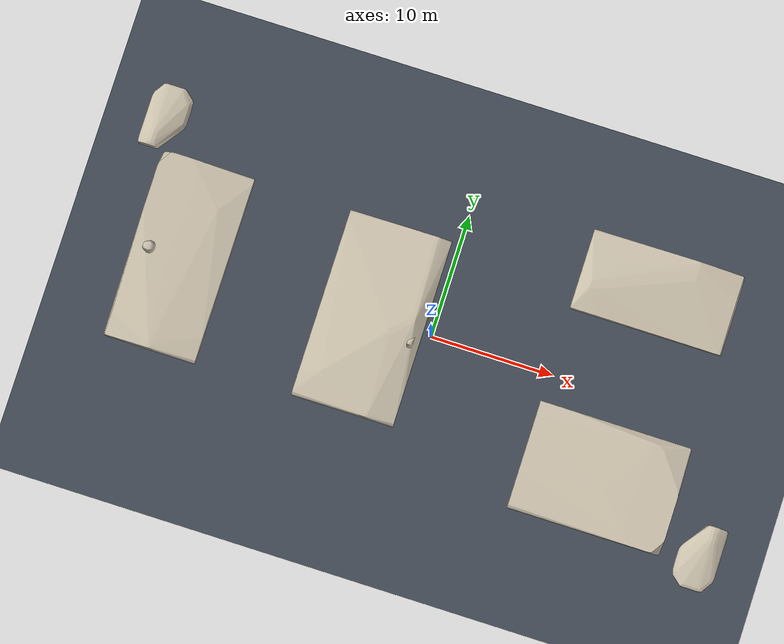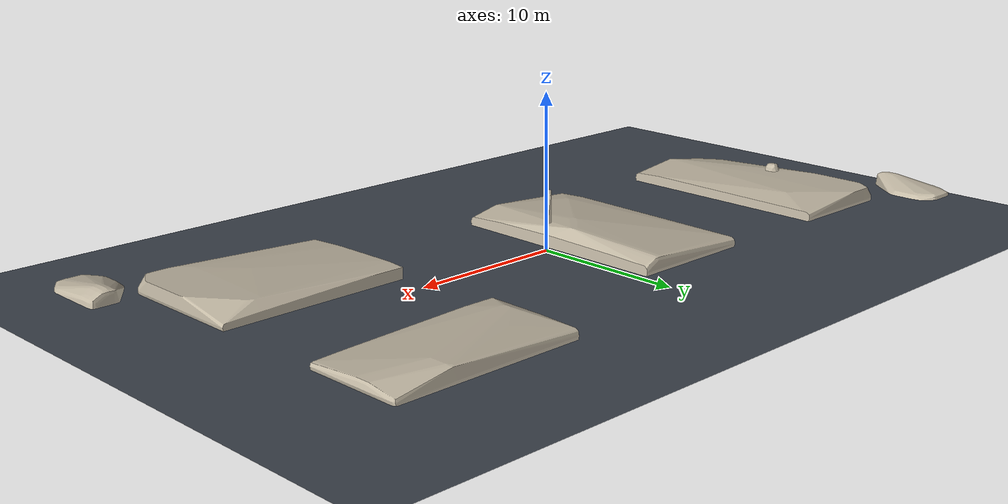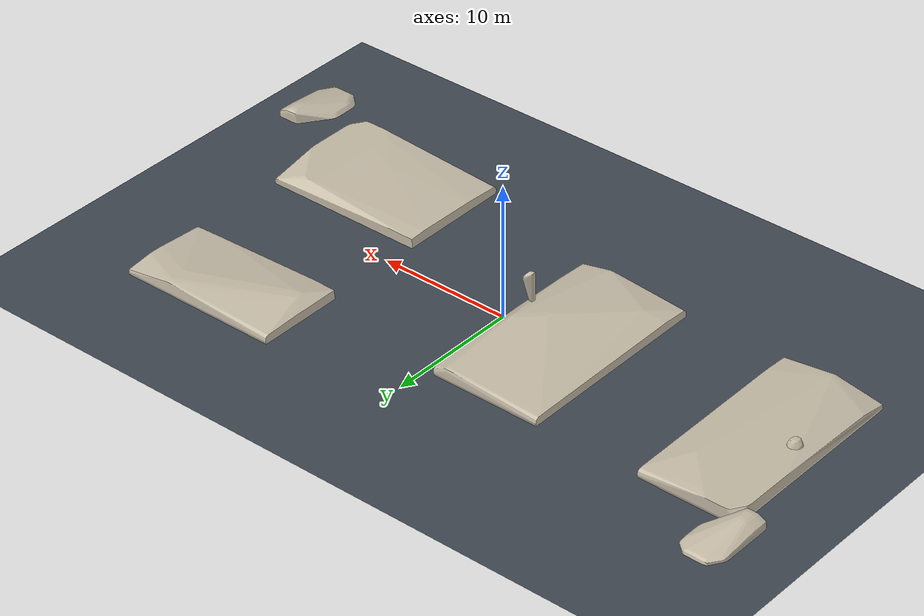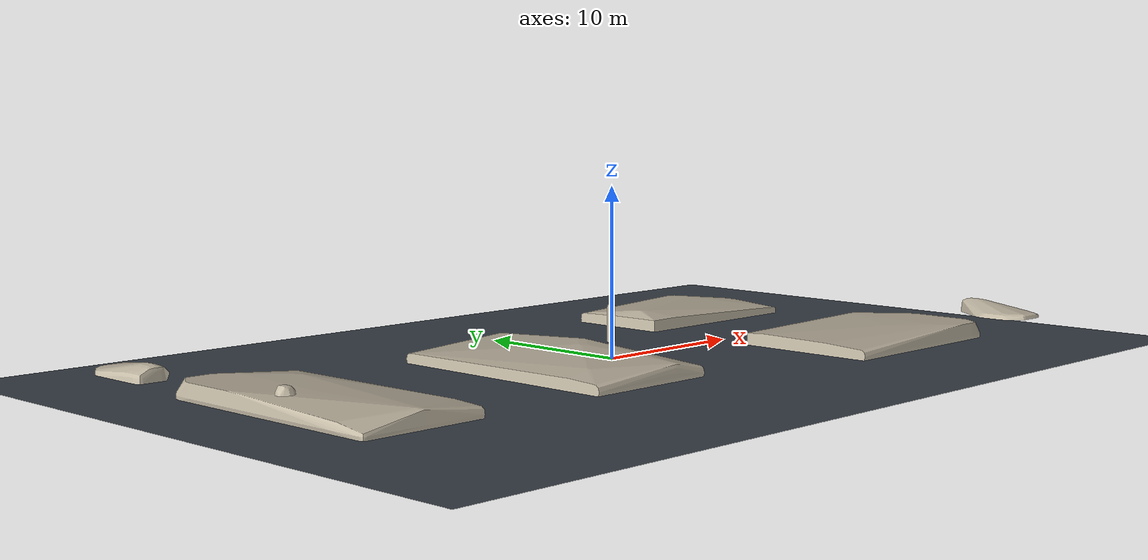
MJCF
<mujoco model="working_field">
  <option timestep="0.001"/>
  <asset>    <mesh name="k_cvx_001" file="convex/cvx_001.stl"/>
    <mesh name="k_cvx_002" file="convex/cvx_002.stl"/>
    <mesh name="k_cvx_003" file="convex/cvx_003.stl"/>
    <mesh name="k_cvx_004" file="convex/cvx_004.stl"/>
    <mesh name="k_cvx_005" file="convex/cvx_005.stl"/>
    <mesh name="k_cvx_007" file="convex/cvx_007.stl"/>
    <mesh name="k_cvx_009" file="convex/cvx_009.stl"/>
    <mesh name="k_cvx_010" file="convex/cvx_010.stl"/></asset>
  <worldbody>
    <light pos="0 -15 15" dir="0 15 -15" diffuse="0.9 0.9 0.9"/>
    <light pos="0 15 15" dir="0 -15 -15" diffuse="0.4 0.4 0.4"/>
    <geom name="floor" type="plane" size="30 20 0.1" rgba="0.25 0.28 0.32 1"/>
      <body name="b_cvx_001" pos="12.4978 -5.0587 0"><geom name="g_cvx_001" mesh="k_cvx_001" friction="1.0" contype="1" conaffinity="1" rgba="0.78 0.74 0.66 1"/></body>
  <body name="b_cvx_002" pos="7.9468 4.3689 0"><geom name="g_cvx_002" mesh="k_cvx_002" friction="1.0" contype="1" conaffinity="1" rgba="0.78 0.74 0.66 1"/></body>
  <body name="b_cvx_003" pos="7.9468 -3.2851 0"><geom name="g_cvx_003" mesh="k_cvx_003" friction="1.0" contype="1" conaffinity="1" rgba="0.78 0.74 0.66 1"/></body>
  <body name="b_cvx_004" pos="-2.4300 0.0000 0"><geom name="g_cvx_004" mesh="k_cvx_004" friction="1.0" contype="1" conaffinity="1" rgba="0.78 0.74 0.66 1"/></body>
  <body name="b_cvx_005" pos="-10.3764 0.0000 0"><geom name="g_cvx_005" mesh="k_cvx_005" friction="1.0" contype="1" conaffinity="1" rgba="0.78 0.74 0.66 1"/></body>
  <body name="b_cvx_007" pos="-12.4980 5.0587 0"><geom name="g_cvx_007" mesh="k_cvx_007" friction="1.0" contype="1" conaffinity="1" rgba="0.78 0.74 0.66 1"/></body>
  <body name="b_cvx_009" pos="-0.6626 -0.5388 0"><geom name="g_cvx_009" mesh="k_cvx_009" friction="1.0" contype="1" conaffinity="1" rgba="0.78 0.74 0.66 1"/></body>
  <body name="b_cvx_010" pos="-11.5932 0.0001 0"><geom name="g_cvx_010" mesh="k_cvx_010" friction="1.0" contype="1" conaffinity="1" rgba="0.78 0.74 0.66 1"/></body>
  </worldbody>
</mujoco>
